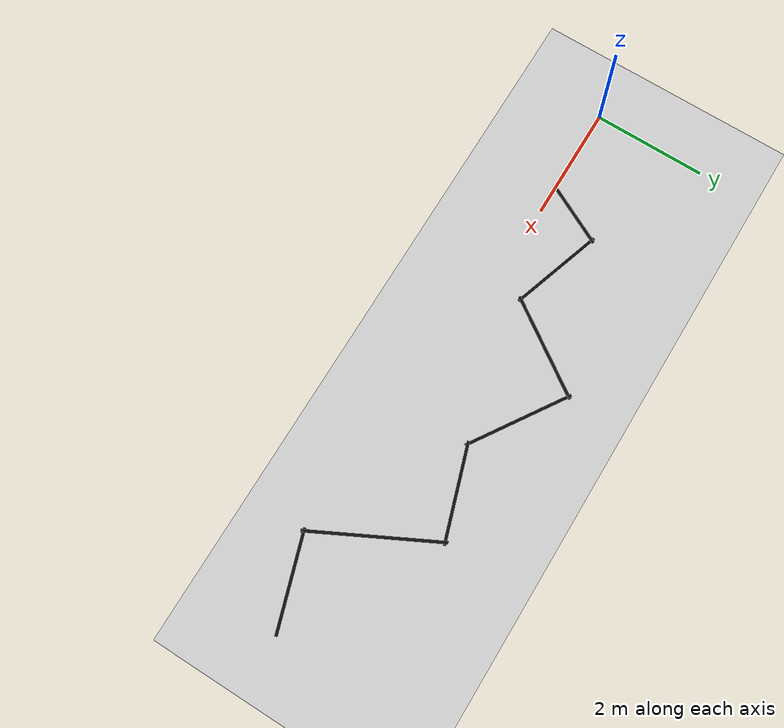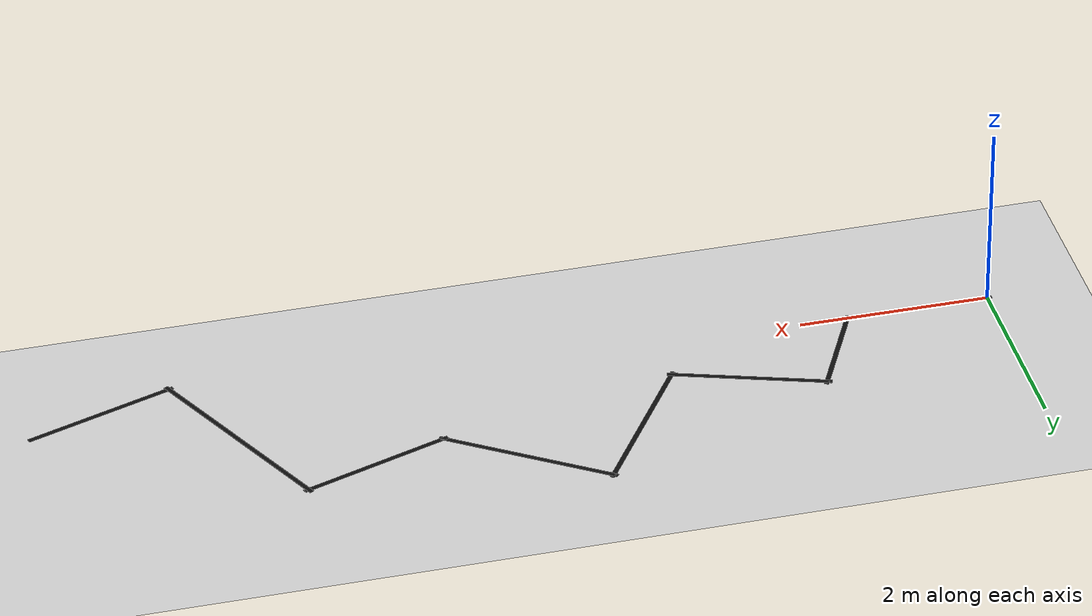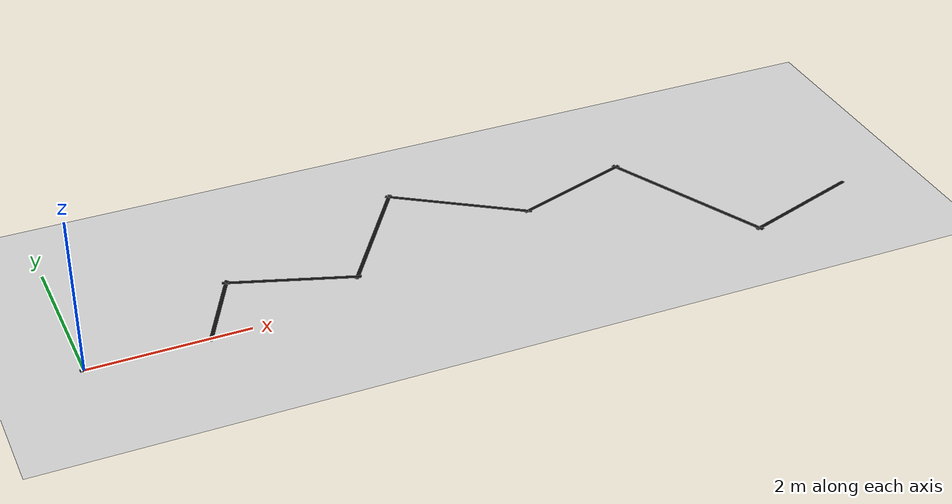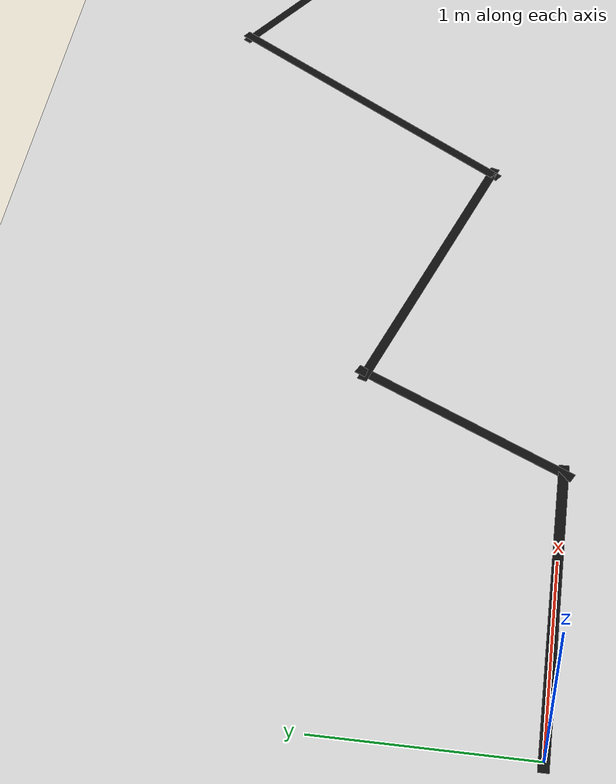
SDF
<?xml version="1.0"?>
<sdf version="1.6">
  <world name="messy">

    <include>
      <uri>model://ground_plane</uri>
    </include>

    <include>
      <uri>model://sun</uri>
    </include>

    <!-- Seg 1: (0,0) -> (1.5,0)  len=1.5  yaw=0 -->
    <model name="m_seg1">
      <static>true</static>
      <pose>0.75 0.0 0.001 0 0 0.000</pose>
      <link name="link">
        <visual name="visual">
          <geometry><box><size>1.60 0.05 0.001</size></box></geometry>
          <material>
            <ambient>0.05 0.05 0.05 1</ambient>
            <diffuse>0.05 0.05 0.05 1</diffuse>
          </material>
        </visual>
      </link>
    </model>

    <!-- Seg 2: (1.5,0) -> (2.0,1.0)  len=1.118  yaw=1.107 -->
    <model name="m_seg2">
      <static>true</static>
      <pose>1.75 0.5 0.001 0 0 1.107</pose>
      <link name="link">
        <visual name="visual">
          <geometry><box><size>1.22 0.05 0.001</size></box></geometry>
          <material>
            <ambient>0.05 0.05 0.05 1</ambient>
            <diffuse>0.05 0.05 0.05 1</diffuse>
          </material>
        </visual>
      </link>
    </model>

    <!-- Seg 3: (2.0,1.0) -> (3.5,0.5)  len=1.581  yaw=-0.322 -->
    <model name="m_seg3">
      <static>true</static>
      <pose>2.75 0.75 0.001 0 0 -0.322</pose>
      <link name="link">
        <visual name="visual">
          <geometry><box><size>1.68 0.05 0.001</size></box></geometry>
          <material>
            <ambient>0.05 0.05 0.05 1</ambient>
            <diffuse>0.05 0.05 0.05 1</diffuse>
          </material>
        </visual>
      </link>
    </model>

    <!-- Seg 4: (3.5,0.5) -> (4.5,2.0)  len=1.803  yaw=0.983 -->
    <model name="m_seg4">
      <static>true</static>
      <pose>4.0 1.25 0.001 0 0 0.983</pose>
      <link name="link">
        <visual name="visual">
          <geometry><box><size>1.90 0.05 0.001</size></box></geometry>
          <material>
            <ambient>0.05 0.05 0.05 1</ambient>
            <diffuse>0.05 0.05 0.05 1</diffuse>
          </material>
        </visual>
      </link>
    </model>

    <!-- Seg 5: (4.5,2.0) -> (6.0,1.0)  len=1.803  yaw=-0.588 -->
    <model name="m_seg5">
      <static>true</static>
      <pose>5.25 1.5 0.001 0 0 -0.588</pose>
      <link name="link">
        <visual name="visual">
          <geometry><box><size>1.90 0.05 0.001</size></box></geometry>
          <material>
            <ambient>0.05 0.05 0.05 1</ambient>
            <diffuse>0.05 0.05 0.05 1</diffuse>
          </material>
        </visual>
      </link>
    </model>

    <!-- Seg 6: (6.0,1.0) -> (7.5,1.5)  len=1.581  yaw=0.322 -->
    <model name="m_seg6">
      <static>true</static>
      <pose>6.75 1.25 0.001 0 0 0.322</pose>
      <link name="link">
        <visual name="visual">
          <geometry><box><size>1.68 0.05 0.001</size></box></geometry>
          <material>
            <ambient>0.05 0.05 0.05 1</ambient>
            <diffuse>0.05 0.05 0.05 1</diffuse>
          </material>
        </visual>
      </link>
    </model>

    <!-- Seg 7: (7.5,1.5) -> (8.5,-0.5)  len=2.236  yaw=-1.107 -->
    <model name="m_seg7">
      <static>true</static>
      <pose>8.0 0.5 0.001 0 0 -1.107</pose>
      <link name="link">
        <visual name="visual">
          <geometry><box><size>2.34 0.05 0.001</size></box></geometry>
          <material>
            <ambient>0.05 0.05 0.05 1</ambient>
            <diffuse>0.05 0.05 0.05 1</diffuse>
          </material>
        </visual>
      </link>
    </model>

    <!-- Seg 8: (8.5,-0.5) -> (10.0,0.0)  len=1.581  yaw=0.322 -->
    <model name="m_seg8">
      <static>true</static>
      <pose>9.25 -0.25 0.001 0 0 0.322</pose>
      <link name="link">
        <visual name="visual">
          <geometry><box><size>1.68 0.05 0.001</size></box></geometry>
          <material>
            <ambient>0.05 0.05 0.05 1</ambient>
            <diffuse>0.05 0.05 0.05 1</diffuse>
          </material>
        </visual>
      </link>
    </model>

  </world>
</sdf>
